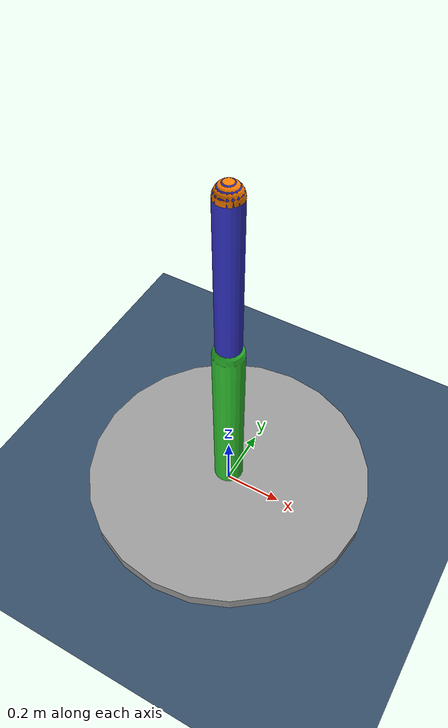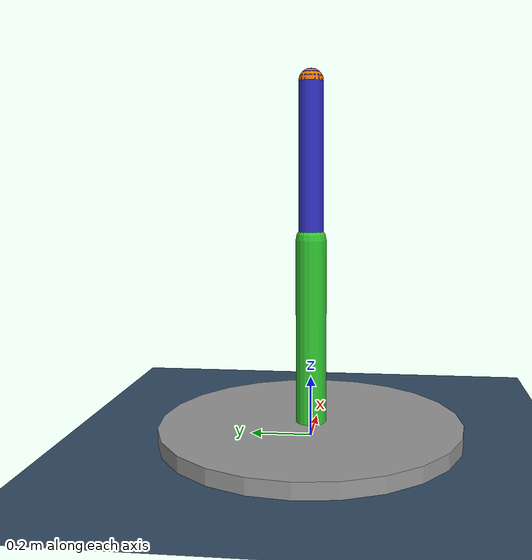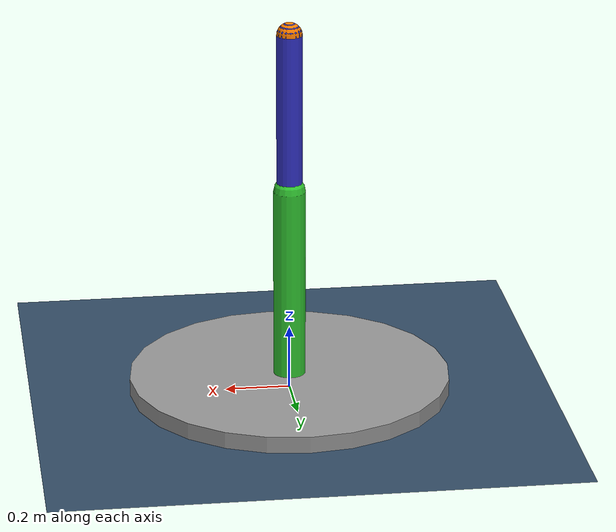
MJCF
<mujoco model="two_link_arm">
  <!-- 基础物理设置 -->
  <option timestep="0.002" gravity="0 0 -9.81"/>

  <default>
    <joint damping="0.05" armature="0.1"/>
    <geom friction="0.5 0.005 0.0001"/>
  </default>

  <worldbody>
    <!-- 光源和地面 -->
    <light name="sun" pos="2 3 4" dir="-2 -3 -4" diffuse="1 1 1"/>
    <geom name="ground" type="plane" size="3 3 0.1"
          rgba="0.2 0.3 0.4 1"/>

    <!-- 固定底座 -->
    <body name="base" pos="0 0 0">
      <geom name="base_plate" type="cylinder" size="0.5 0.05"
            pos="0 0 0" rgba="0.6 0.6 0.6 1"/>

      <!-- 关节1：绕Y轴旋转，使第一连杆在竖直平面内运动 -->
      <body name="link1_body" pos="0 0 0.05">
        <joint name="joint1" type="hinge" axis="1 0 0"
               range="-2.14 2.14" limited="true"/>

        <!-- 连杆1 -->
        <geom name="link1" type="capsule"
              fromto="0 0 0 0 0 0.6" size="0.05"
              rgba="0.2 0.8 0.2 1"/>

        <!-- 关节2位于连杆1末端 -->
        <body name="link2_body" pos="0 0 0.6">
          <joint name="joint2" type="hinge" axis="0 1 0"
                 range="-2.5 2.5" limited="true"/>

          <!-- 连杆2 -->
          <geom name="link2" type="capsule"
                fromto="0 0 0 0 0 0.5" size="0.04"
                rgba="0.2 0.2 0.8 1"/>

          <!-- 末端执行器标记 -->
          <geom name="tip" type="sphere" size="0.04"
                pos="0 0 0.5" rgba="1 0.5 0 1"/>
        </body>
      </body>
    </body>
  </worldbody>

  <!-- 位置伺服执行器：ctrl 为目标关节角（弧度） -->
  <actuator>
    <position name="motor1" joint="joint1"
              kp="30" kv="2"
              ctrllimited="true" ctrlrange="-2.14 2.14"/>

    <position name="motor2" joint="joint2"
              kp="20" kv="1.5"
              ctrllimited="true" ctrlrange="-2.5 2.5"/>
  </actuator>
</mujoco>
